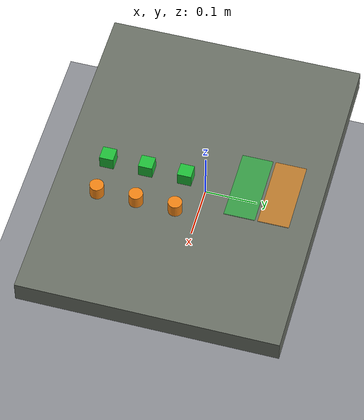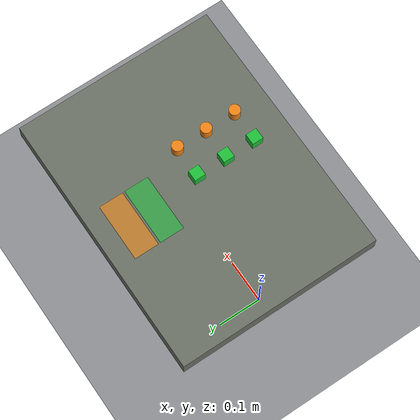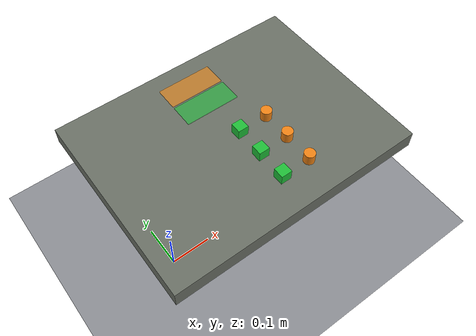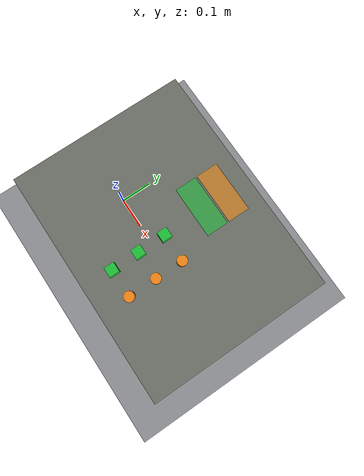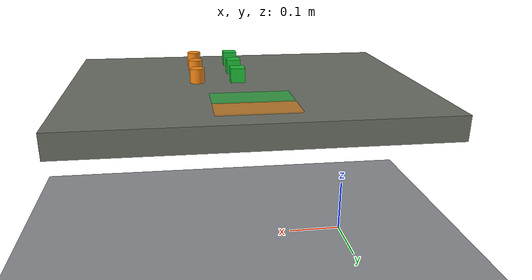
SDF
<?xml version="1.0"?>
<sdf version="1.9">
  <world name="mecharm_classification_fake">
    <physics name="1ms" type="ignored">
      <max_step_size>0.001</max_step_size>
      <real_time_factor>1.0</real_time_factor>
    </physics>
    <plugin filename="gz-sim-physics-system" name="gz::sim::systems::Physics"/>
    <plugin filename="gz-sim-user-commands-system" name="gz::sim::systems::UserCommands"/>
    <plugin filename="gz-sim-scene-broadcaster-system" name="gz::sim::systems::SceneBroadcaster"/>
    <plugin filename="gz-sim-contact-system" name="gz::sim::systems::Contact"/>

    <light name="sun" type="directional">
      <cast_shadows>true</cast_shadows>
      <pose>0 0 4 0 0 0</pose>
      <diffuse>0.8 0.8 0.8 1</diffuse>
      <specular>0.2 0.2 0.2 1</specular>
      <direction>-0.5 0.1 -0.9</direction>
    </light>

    <model name="ground">
      <static>true</static>
      <link name="ground_link">
        <collision name="collision">
          <geometry><plane><normal>0 0 1</normal><size>4 4</size></plane></geometry>
        </collision>
        <visual name="visual">
          <geometry><plane><normal>0 0 1</normal><size>4 4</size></plane></geometry>
          <material><diffuse>0.55 0.56 0.58 1</diffuse></material>
        </visual>
      </link>
    </model>

    <!-- Fixed grasp-grid markers. Their centers match classification_fake.yaml. -->
    <model name="grid_1">
      <static>true</static><pose>0.21 -0.12 0.321 0 0 0</pose>
      <link name="marker_link"><visual name="visual">
        <geometry><box><size>0.010 0.010 0.0005</size></box></geometry>
        <material><diffuse>0.12 0.55 0.95 0.65</diffuse></material>
      </visual></link>
    </model>
    <model name="grid_2">
      <static>true</static><pose>0.28 -0.12 0.321 0 0 0</pose>
      <link name="marker_link"><visual name="visual">
        <geometry><box><size>0.010 0.010 0.0005</size></box></geometry>
        <material><diffuse>0.12 0.55 0.95 0.65</diffuse></material>
      </visual></link>
    </model>
    <model name="grid_3">
      <static>true</static><pose>0.21 -0.05 0.321 0 0 0</pose>
      <link name="marker_link"><visual name="visual">
        <geometry><box><size>0.010 0.010 0.0005</size></box></geometry>
        <material><diffuse>0.12 0.55 0.95 0.65</diffuse></material>
      </visual></link>
    </model>
    <model name="grid_4">
      <static>true</static><pose>0.28 -0.05 0.321 0 0 0</pose>
      <link name="marker_link"><visual name="visual">
        <geometry><box><size>0.010 0.010 0.0005</size></box></geometry>
        <material><diffuse>0.12 0.55 0.95 0.65</diffuse></material>
      </visual></link>
    </model>
    <model name="grid_5">
      <static>true</static><pose>0.21 0.02 0.321 0 0 0</pose>
      <link name="marker_link"><visual name="visual">
        <geometry><box><size>0.010 0.010 0.0005</size></box></geometry>
        <material><diffuse>0.12 0.55 0.95 0.65</diffuse></material>
      </visual></link>
    </model>
    <model name="grid_6">
      <static>true</static><pose>0.28 0.02 0.321 0 0 0</pose>
      <link name="marker_link"><visual name="visual">
        <geometry><box><size>0.010 0.010 0.0005</size></box></geometry>
        <material><diffuse>0.12 0.55 0.95 0.65</diffuse></material>
      </visual></link>
    </model>

    <model name="cube_bin">
      <static>true</static><pose>0.20 0.13 0.321 0 0 0</pose>
      <link name="bin_marker_link"><visual name="visual">
        <geometry><box><size>0.13 0.055 0.002</size></box></geometry>
        <material><diffuse>0.15 0.75 0.25 0.65</diffuse></material>
      </visual></link>
    </model>
    <model name="cylinder_bin">
      <static>true</static><pose>0.20 0.19 0.321 0 0 0</pose>
      <link name="bin_marker_link"><visual name="visual">
        <geometry><box><size>0.13 0.055 0.002</size></box></geometry>
        <material><diffuse>0.95 0.55 0.10 0.65</diffuse></material>
      </visual></link>
    </model>

    <model name="table">
      <static>true</static>
      <pose>0.20 0.03 0.30 0 0 0</pose>
      <link name="table_link">
        <collision name="table_top_collision">
          <geometry><box><size>0.60 0.46 0.04</size></box></geometry>
          <surface>
            <friction><ode><mu>0.9</mu><mu2>0.9</mu2></ode></friction>
            <contact><ode><kp>1000000</kp><kd>10</kd></ode></contact>
          </surface>
        </collision>
        <visual name="table_top_visual">
          <geometry><box><size>0.60 0.46 0.04</size></box></geometry>
          <material><diffuse>0.42 0.44 0.40 1</diffuse></material>
        </visual>
      </link>
      <plugin filename="ignition-gazebo-detachable-joint-system"
              name="ignition::gazebo::systems::DetachableJoint">
        <parent_link>table_link</parent_link>
        <child_model>cube_1</child_model>
        <child_link>object_link</child_link>
        <attach_topic>/classification/cube_1/table_attach</attach_topic>
        <detach_topic>/classification/cube_1/table_detach</detach_topic>
        <output_topic>/classification/cube_1/table_state</output_topic>
      </plugin>
      <plugin filename="ignition-gazebo-detachable-joint-system"
              name="ignition::gazebo::systems::DetachableJoint">
        <parent_link>table_link</parent_link>
        <child_model>cylinder_1</child_model>
        <child_link>object_link</child_link>
        <attach_topic>/classification/cylinder_1/table_attach</attach_topic>
        <detach_topic>/classification/cylinder_1/table_detach</detach_topic>
        <output_topic>/classification/cylinder_1/table_state</output_topic>
      </plugin>
      <plugin filename="ignition-gazebo-detachable-joint-system"
              name="ignition::gazebo::systems::DetachableJoint">
        <parent_link>table_link</parent_link>
        <child_model>cube_2</child_model>
        <child_link>object_link</child_link>
        <attach_topic>/classification/cube_2/table_attach</attach_topic>
        <detach_topic>/classification/cube_2/table_detach</detach_topic>
        <output_topic>/classification/cube_2/table_state</output_topic>
      </plugin>
      <plugin filename="ignition-gazebo-detachable-joint-system"
              name="ignition::gazebo::systems::DetachableJoint">
        <parent_link>table_link</parent_link>
        <child_model>cylinder_2</child_model>
        <child_link>object_link</child_link>
        <attach_topic>/classification/cylinder_2/table_attach</attach_topic>
        <detach_topic>/classification/cylinder_2/table_detach</detach_topic>
        <output_topic>/classification/cylinder_2/table_state</output_topic>
      </plugin>
      <plugin filename="ignition-gazebo-detachable-joint-system"
              name="ignition::gazebo::systems::DetachableJoint">
        <parent_link>table_link</parent_link>
        <child_model>cube_3</child_model>
        <child_link>object_link</child_link>
        <attach_topic>/classification/cube_3/table_attach</attach_topic>
        <detach_topic>/classification/cube_3/table_detach</detach_topic>
        <output_topic>/classification/cube_3/table_state</output_topic>
      </plugin>
      <plugin filename="ignition-gazebo-detachable-joint-system"
              name="ignition::gazebo::systems::DetachableJoint">
        <parent_link>table_link</parent_link>
        <child_model>cylinder_3</child_model>
        <child_link>object_link</child_link>
        <attach_topic>/classification/cylinder_3/table_attach</attach_topic>
        <detach_topic>/classification/cylinder_3/table_detach</detach_topic>
        <output_topic>/classification/cylinder_3/table_state</output_topic>
      </plugin>
    </model>

    <model name="cube_1">
      <pose>0.21 -0.12 0.3325 0 0 0</pose>
      <link name="object_link">
        <velocity_decay><linear>2.0</linear><angular>20.0</angular></velocity_decay>
        <inertial><mass>0.018</mass><inertia>
          <ixx>0.000001875</ixx><iyy>0.000001875</iyy><izz>0.000001875</izz>
        </inertia></inertial>
        <collision name="object_collision">
          <geometry><box><size>0.025 0.025 0.025</size></box></geometry>
          <surface><friction><ode><mu>2.0</mu><mu2>2.0</mu2></ode></friction>
            <contact><ode><kp>1000000</kp><kd>20</kd></ode></contact></surface>
        </collision>
        <visual name="visual">
          <geometry><box><size>0.025 0.025 0.025</size></box></geometry>
          <material><diffuse>0.12 0.75 0.22 1</diffuse></material>
        </visual>
      </link>
    </model>
    <model name="cube_2">
      <pose>0.21 -0.05 0.3325 0 0 0</pose>
      <link name="object_link">
        <velocity_decay><linear>2.0</linear><angular>20.0</angular></velocity_decay>
        <inertial><mass>0.018</mass><inertia>
          <ixx>0.000001875</ixx><iyy>0.000001875</iyy><izz>0.000001875</izz>
        </inertia></inertial>
        <collision name="object_collision">
          <geometry><box><size>0.025 0.025 0.025</size></box></geometry>
          <surface><friction><ode><mu>2.0</mu><mu2>2.0</mu2></ode></friction>
            <contact><ode><kp>1000000</kp><kd>20</kd></ode></contact></surface>
        </collision>
        <visual name="visual">
          <geometry><box><size>0.025 0.025 0.025</size></box></geometry>
          <material><diffuse>0.12 0.75 0.22 1</diffuse></material>
        </visual>
      </link>
    </model>
    <model name="cube_3">
      <pose>0.21 0.02 0.3325 0 0 0</pose>
      <link name="object_link">
        <velocity_decay><linear>2.0</linear><angular>20.0</angular></velocity_decay>
        <inertial><mass>0.018</mass><inertia>
          <ixx>0.000001875</ixx><iyy>0.000001875</iyy><izz>0.000001875</izz>
        </inertia></inertial>
        <collision name="object_collision">
          <geometry><box><size>0.025 0.025 0.025</size></box></geometry>
          <surface><friction><ode><mu>2.0</mu><mu2>2.0</mu2></ode></friction>
            <contact><ode><kp>1000000</kp><kd>20</kd></ode></contact></surface>
        </collision>
        <visual name="visual">
          <geometry><box><size>0.025 0.025 0.025</size></box></geometry>
          <material><diffuse>0.12 0.75 0.22 1</diffuse></material>
        </visual>
      </link>
    </model>

    <model name="cylinder_1">
      <pose>0.28 -0.12 0.3325 0 0 0</pose>
      <link name="object_link">
        <velocity_decay><linear>2.0</linear><angular>20.0</angular></velocity_decay>
        <inertial><mass>0.018</mass><inertia>
          <ixx>0.000001641</ixx><iyy>0.000001641</iyy><izz>0.000001406</izz>
        </inertia></inertial>
        <collision name="object_collision">
          <geometry><cylinder><radius>0.0125</radius><length>0.025</length></cylinder></geometry>
          <surface><friction><ode><mu>2.0</mu><mu2>2.0</mu2></ode></friction>
            <contact><ode><kp>1000000</kp><kd>20</kd></ode></contact></surface>
        </collision>
        <visual name="visual">
          <geometry><cylinder><radius>0.0125</radius><length>0.025</length></cylinder></geometry>
          <material><diffuse>0.95 0.52 0.08 1</diffuse></material>
        </visual>
      </link>
    </model>
    <model name="cylinder_2">
      <pose>0.28 -0.05 0.3325 0 0 0</pose>
      <link name="object_link">
        <velocity_decay><linear>2.0</linear><angular>20.0</angular></velocity_decay>
        <inertial><mass>0.018</mass><inertia>
          <ixx>0.000001641</ixx><iyy>0.000001641</iyy><izz>0.000001406</izz>
        </inertia></inertial>
        <collision name="object_collision">
          <geometry><cylinder><radius>0.0125</radius><length>0.025</length></cylinder></geometry>
          <surface><friction><ode><mu>2.0</mu><mu2>2.0</mu2></ode></friction>
            <contact><ode><kp>1000000</kp><kd>20</kd></ode></contact></surface>
        </collision>
        <visual name="visual">
          <geometry><cylinder><radius>0.0125</radius><length>0.025</length></cylinder></geometry>
          <material><diffuse>0.95 0.52 0.08 1</diffuse></material>
        </visual>
      </link>
    </model>
    <model name="cylinder_3">
      <pose>0.28 0.02 0.3325 0 0 0</pose>
      <link name="object_link">
        <velocity_decay><linear>2.0</linear><angular>20.0</angular></velocity_decay>
        <inertial><mass>0.018</mass><inertia>
          <ixx>0.000001641</ixx><iyy>0.000001641</iyy><izz>0.000001406</izz>
        </inertia></inertial>
        <collision name="object_collision">
          <geometry><cylinder><radius>0.0125</radius><length>0.025</length></cylinder></geometry>
          <surface><friction><ode><mu>2.0</mu><mu2>2.0</mu2></ode></friction>
            <contact><ode><kp>1000000</kp><kd>20</kd></ode></contact></surface>
        </collision>
        <visual name="visual">
          <geometry><cylinder><radius>0.0125</radius><length>0.025</length></cylinder></geometry>
          <material><diffuse>0.95 0.52 0.08 1</diffuse></material>
        </visual>
      </link>
    </model>
  </world>
</sdf>
